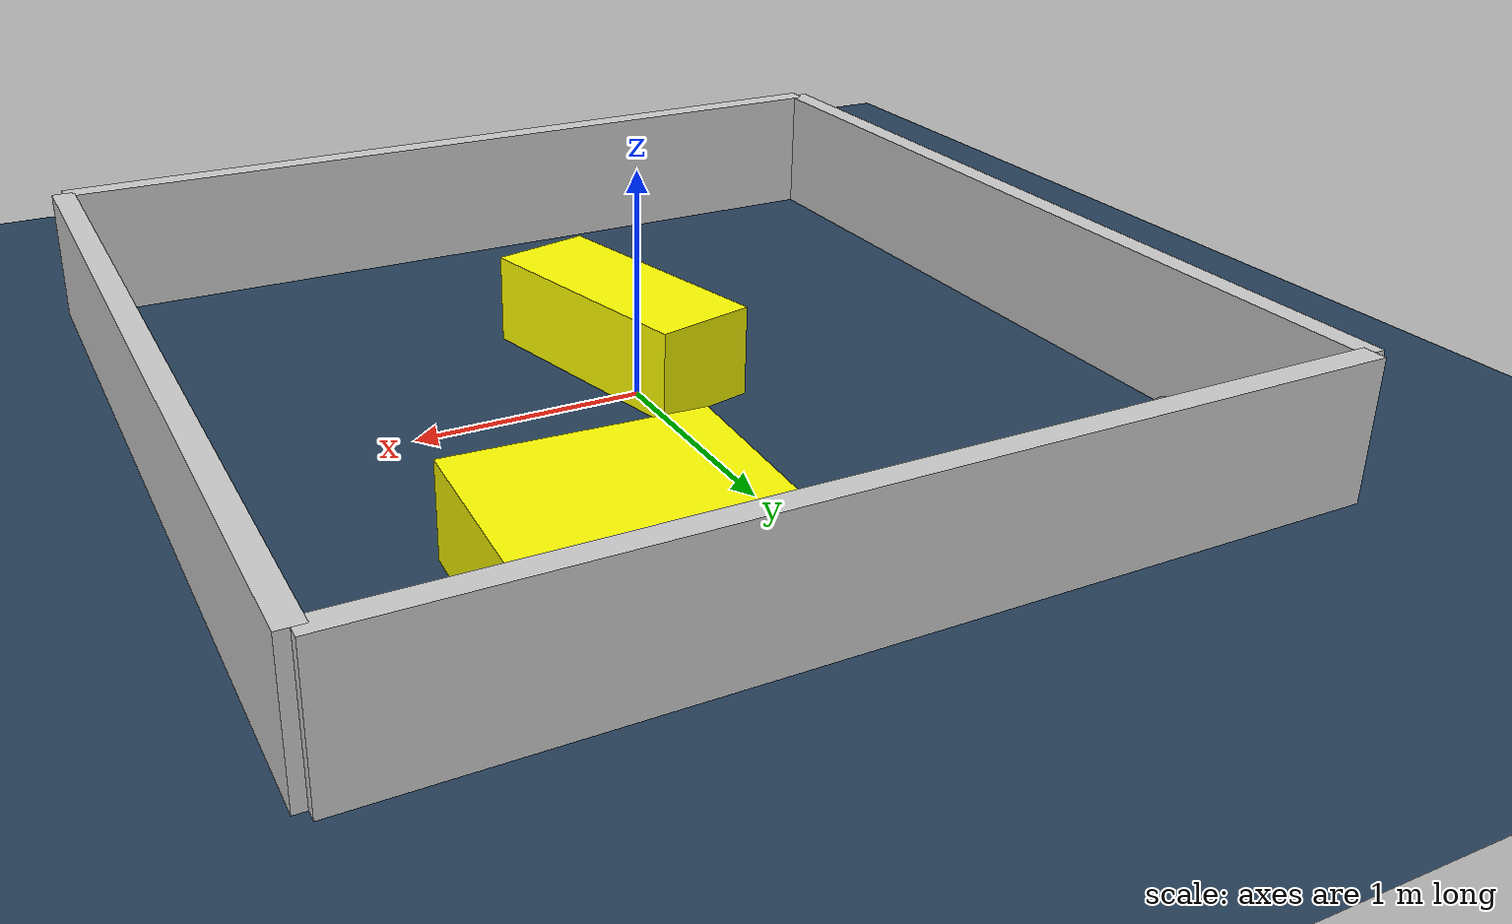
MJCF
<?xml version="1.0" ?>
<mujoco model="generated_environment">
  <option timestep="0.01" integrator="RK4" cone="elliptic"/>
  <default>
    <geom density="1"/>
  </default>
  <asset>
    <texture builtin="gradient" height="3072" rgb1="0.3 0.5 0.7" rgb2="0 0 0" type="skybox" width="512"/>
    <texture builtin="checker" height="300" mark="edge" markrgb="0.8 0.8 0.8" name="groundplane" rgb1="0.2 0.3 0.4" rgb2="0.1 0.2 0.3" type="2d" width="300"/>
    <material name="groundplane" reflectance="0.2" texrepeat="5 5" texture="groundplane" texuniform="true"/>
    <material name="robot" rgba="0.0 1.0 0.0 1"/>
  </asset>
  <worldbody>
    <light dir="0 0 -1" directional="true" pos="0 0 1.5"/>
    <geom condim="4" friction="1.0 0.005 0.001" material="groundplane" name="floor" size="0 0 0.05" type="plane"/>
    <body name="walls">
      <geom name="wall_1" condim="4" pos="-2.0 0.0 0.3" rgba="0.800000011920929 0.800000011920929 0.800000011920929 1.0" size="0.05 2.0 0.3" type="box"/>
      <geom name="wall_2" condim="4" pos="2.0 0.0 0.3" rgba="0.800000011920929 0.800000011920929 0.800000011920929 1.0" size="0.05 2.0 0.3" type="box"/>
      <geom name="wall_3" condim="4" pos="0.0 -2.0 0.3" rgba="0.800000011920929 0.800000011920929 0.800000011920929 1.0" size="2.0 0.05 0.3" type="box"/>
      <geom name="wall_4" condim="4" pos="0.0 2.0 0.3" rgba="0.800000011920929 0.800000011920929 0.800000011920929 1.0" size="2.0 0.05 0.3" type="box"/>
    </body>
    <body name="robot">
      <joint name="joint_x" type="slide" pos="0 0 0" axis="1 0 0"/>
      <joint name="joint_y" type="slide" pos="0 0 0" axis="0 1 0"/>
      <geom name="robot" type="sphere" pos="-1.607593410615333 1.4140762471541288 0.2" size="0.05" mass="5." friction="1.0 0.005 0.0001" condim="4"/>
      <site name="sensor_ball"/>
    </body>
    <body name="obstacle_1_movable">
      <geom name="obstacle_1_movable" condim="4" pos="0.7289182288489893 1.4190999867281704 0.2" euler="0 0 267.2672867670474" friction="1.0 0.005 0.001" rgba="1 1 0 1" size="0.48345168272688127 0.521203454250581 0.2" type="box" mass="0.1"/>
      <joint type="free"/>
    </body>
    <body name="obstacle_2_movable">
      <geom name="obstacle_2_movable" condim="4" pos="-0.06322575773159 -0.305530113339739 0.2" euler="0 0 103.50208576823783" friction="1.0 0.005 0.001" rgba="1 1 0 1" size="0.5718222605552468 0.22766900620677963 0.2" type="box" mass="0.1"/>
      <joint type="free"/>
    </body>
  </worldbody>
  <actuator>
    <motor name="actuator_x" joint="joint_x" gear="1" ctrlrange="-1 1"/>
    <motor name="actuator_y" joint="joint_y" gear="1" ctrlrange="-1 1"/>
  </actuator>
</mujoco>
